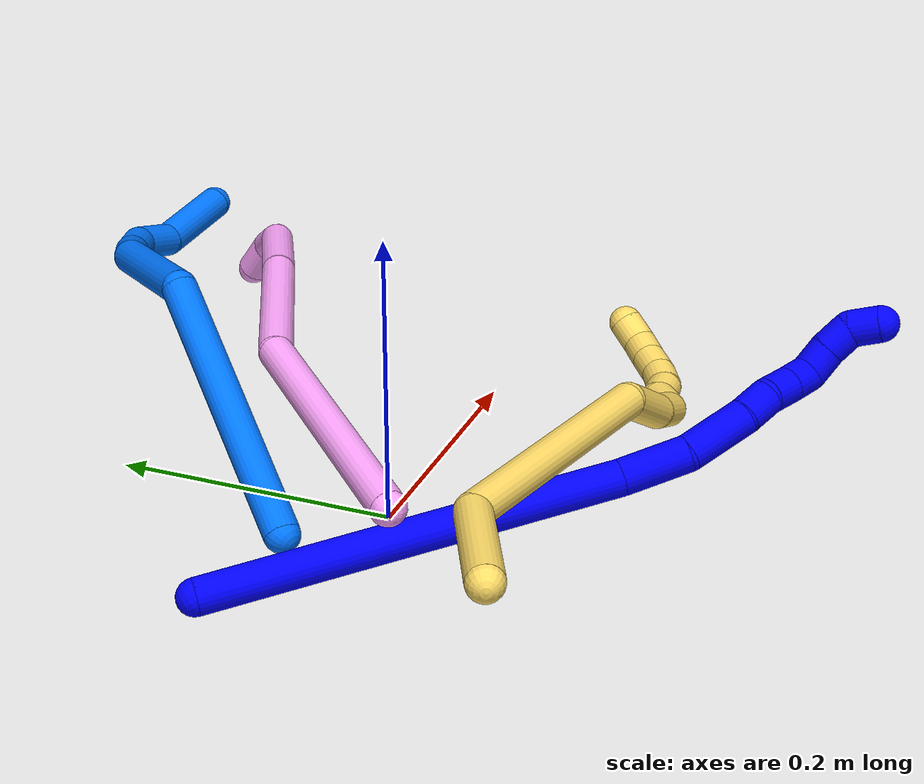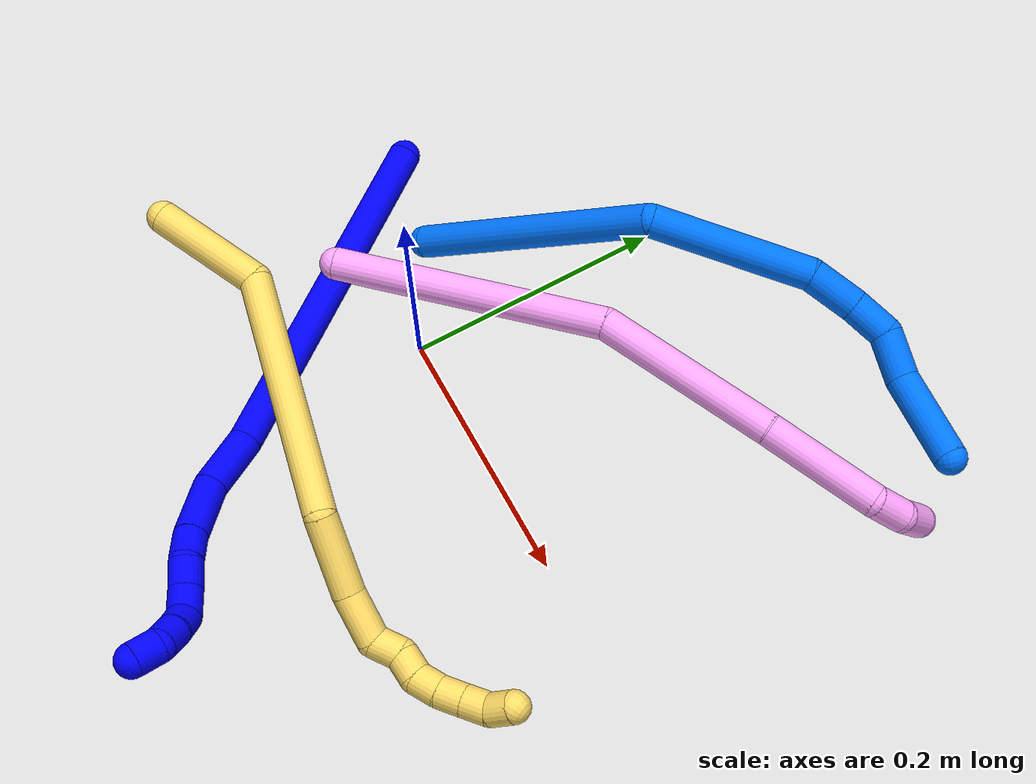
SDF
<sdf version="1.7">
 <world name="default">
  <model name="1">
   <static>0</static>
   <link name="1">
    <collision name="collision-cylinder-e_1_1_4">
     <pose>0.023128 -0.03682 0.134424 0.267354 0.164438 0.022163</pose>
     <geometry><cylinder><radius>0.0125</radius><length>0.282564</length></cylinder></geometry>
     <surface>
      <friction><ode><mu>1.16</mu><mu2>1.16</mu2><slip1>0</slip1><slip2>0</slip2></ode></friction>
      <contact><ode><kp>1e+06</kp><kd>1</kd><max_vel>0</max_vel><min_depth>0.001</min_depth></ode></contact>
     </surface>
    </collision>
    <visual name="visual-cylinder-e_1_1_4">
     <pose>0.023128 -0.03682 0.134424 0.267354 0.164438 0.022163</pose>
     <geometry><cylinder><radius>0.0125</radius><length>0.282564</length></cylinder></geometry>
     <material><ambient>0 0 1 1</ambient></material>
    </visual>
    <collision name="collision-cylinder-e_2_4_5">
     <pose>0.046409 -0.078474 0.291579 0.209531 0.00662 0.000696</pose>
     <geometry><cylinder><radius>0.0125</radius><length>0.046478</length></cylinder></geometry>
     <surface>
      <friction><ode><mu>1.16</mu><mu2>1.16</mu2><slip1>0</slip1><slip2>0</slip2></ode></friction>
      <contact><ode><kp>1e+06</kp><kd>1</kd><max_vel>0</max_vel><min_depth>0.001</min_depth></ode></contact>
     </surface>
    </collision>
    <visual name="visual-cylinder-e_2_4_5">
     <pose>0.046409 -0.078474 0.291579 0.209531 0.00662 0.000696</pose>
     <geometry><cylinder><radius>0.0125</radius><length>0.046478</length></cylinder></geometry>
     <material><ambient>0 0 1 1</ambient></material>
    </visual>
    <collision name="collision-cylinder-e_3_5_6">
     <pose>0.050072 -0.082521 0.337061 -0.034567 0.152958 -0.002649</pose>
     <geometry><cylinder><radius>0.0125</radius><length>0.046069</length></cylinder></geometry>
     <surface>
      <friction><ode><mu>1.16</mu><mu2>1.16</mu2><slip1>0</slip1><slip2>0</slip2></ode></friction>
      <contact><ode><kp>1e+06</kp><kd>1</kd><max_vel>0</max_vel><min_depth>0.001</min_depth></ode></contact>
     </surface>
    </collision>
    <visual name="visual-cylinder-e_3_5_6">
     <pose>0.050072 -0.082521 0.337061 -0.034567 0.152958 -0.002649</pose>
     <geometry><cylinder><radius>0.0125</radius><length>0.046069</length></cylinder></geometry>
     <material><ambient>0 0 1 1</ambient></material>
    </visual>
    <collision name="collision-cylinder-e_4_6_7">
     <pose>0.056644 -0.080062 0.370458 -0.155805 0.276864 -0.02175</pose>
     <geometry><cylinder><radius>0.0125</radius><length>0.022404</length></cylinder></geometry>
     <surface>
      <friction><ode><mu>1.16</mu><mu2>1.16</mu2><slip1>0</slip1><slip2>0</slip2></ode></friction>
      <contact><ode><kp>1e+06</kp><kd>1</kd><max_vel>0</max_vel><min_depth>0.001</min_depth></ode></contact>
     </surface>
    </collision>
    <visual name="visual-cylinder-e_4_6_7">
     <pose>0.056644 -0.080062 0.370458 -0.155805 0.276864 -0.02175</pose>
     <geometry><cylinder><radius>0.0125</radius><length>0.022404</length></cylinder></geometry>
     <material><ambient>0 0 1 1</ambient></material>
    </visual>
    <collision name="collision-cylinder-e_5_7_8">
     <pose>0.065253 -0.078531 0.389952 0.015848 0.55985 0.004556</pose>
     <geometry><cylinder><radius>0.0125</radius><length>0.02089</length></cylinder></geometry>
     <surface>
      <friction><ode><mu>1.16</mu><mu2>1.16</mu2><slip1>0</slip1><slip2>0</slip2></ode></friction>
      <contact><ode><kp>1e+06</kp><kd>1</kd><max_vel>0</max_vel><min_depth>0.001</min_depth></ode></contact>
     </surface>
    </collision>
    <visual name="visual-cylinder-e_5_7_8">
     <pose>0.065253 -0.078531 0.389952 0.015848 0.55985 0.004556</pose>
     <geometry><cylinder><radius>0.0125</radius><length>0.02089</length></cylinder></geometry>
     <material><ambient>0 0 1 1</ambient></material>
    </visual>
    <collision name="collision-cylinder-e_6_8_9">
     <pose>0.075595 -0.078548 0.407876 -0.013503 0.486107 -0.003348</pose>
     <geometry><cylinder><radius>0.0125</radius><length>0.02053</length></cylinder></geometry>
     <surface>
      <friction><ode><mu>1.16</mu><mu2>1.16</mu2><slip1>0</slip1><slip2>0</slip2></ode></friction>
      <contact><ode><kp>1e+06</kp><kd>1</kd><max_vel>0</max_vel><min_depth>0.001</min_depth></ode></contact>
     </surface>
    </collision>
    <visual name="visual-cylinder-e_6_8_9">
     <pose>0.075595 -0.078548 0.407876 -0.013503 0.486107 -0.003348</pose>
     <geometry><cylinder><radius>0.0125</radius><length>0.02053</length></cylinder></geometry>
     <material><ambient>0 0 1 1</ambient></material>
    </visual>
    <collision name="collision-cylinder-e_7_9_10">
     <pose>0.078544 -0.07525 0.426461 -0.322306 -0.182188 0.029697</pose>
     <geometry><cylinder><radius>0.0125</radius><length>0.02039</length></cylinder></geometry>
     <surface>
      <friction><ode><mu>1.16</mu><mu2>1.16</mu2><slip1>0</slip1><slip2>0</slip2></ode></friction>
      <contact><ode><kp>1e+06</kp><kd>1</kd><max_vel>0</max_vel><min_depth>0.001</min_depth></ode></contact>
     </surface>
    </collision>
    <visual name="visual-cylinder-e_7_9_10">
     <pose>0.078544 -0.07525 0.426461 -0.322306 -0.182188 0.029697</pose>
     <geometry><cylinder><radius>0.0125</radius><length>0.02039</length></cylinder></geometry>
     <material><ambient>0 0 1 1</ambient></material>
    </visual>
    <collision name="collision-cylinder-e_8_10_11">
     <pose>0.074348 -0.070443 0.4456 -0.167782 -0.235982 0.019935</pose>
     <geometry><cylinder><radius>0.0125</radius><length>0.02009</length></cylinder></geometry>
     <surface>
      <friction><ode><mu>1.16</mu><mu2>1.16</mu2><slip1>0</slip1><slip2>0</slip2></ode></friction>
      <contact><ode><kp>1e+06</kp><kd>1</kd><max_vel>0</max_vel><min_depth>0.001</min_depth></ode></contact>
     </surface>
    </collision>
    <visual name="visual-cylinder-e_8_10_11">
     <pose>0.074348 -0.070443 0.4456 -0.167782 -0.235982 0.019935</pose>
     <geometry><cylinder><radius>0.0125</radius><length>0.02009</length></cylinder></geometry>
     <material><ambient>0 0 1 1</ambient></material>
    </visual>
    <collision name="collision-cylinder-e_9_11_2">
     <pose>0.068472 -0.073118 0.463888 0.461504 -0.349812 -0.082984</pose>
     <geometry><cylinder><radius>0.0125</radius><length>0.020586</length></cylinder></geometry>
     <surface>
      <friction><ode><mu>1.16</mu><mu2>1.16</mu2><slip1>0</slip1><slip2>0</slip2></ode></friction>
      <contact><ode><kp>1e+06</kp><kd>1</kd><max_vel>0</max_vel><min_depth>0.001</min_depth></ode></contact>
     </surface>
    </collision>
    <visual name="visual-cylinder-e_9_11_2">
     <pose>0.068472 -0.073118 0.463888 0.461504 -0.349812 -0.082984</pose>
     <geometry><cylinder><radius>0.0125</radius><length>0.020586</length></cylinder></geometry>
     <material><ambient>0 0 1 1</ambient></material>
    </visual>
    <collision name="collision-sphere-2">
     <pose>0.064944 -0.077424 0.472546 0 -0 0</pose>
     <geometry><sphere><radius>0.0125</radius></sphere></geometry>
     <surface>
      <friction><ode><mu>1.16</mu><mu2>1.16</mu2><slip1>0</slip1><slip2>0</slip2></ode></friction>
      <contact><ode><kp>1e+06</kp><kd>1</kd><max_vel>0</max_vel><min_depth>0.001</min_depth></ode></contact>
     </surface>
    </collision>
    <visual name="visual-sphere-2">
     <pose>0.064944 -0.077424 0.472546 0 -0 0</pose>
     <geometry><sphere><radius>0.0125</radius></sphere></geometry>
     <material><ambient>0 0 1 1</ambient></material>
    </visual>
    <collision name="collision-sphere-11">
     <pose>0.072 -0.068812 0.45523 0 -0 0</pose>
     <geometry><sphere><radius>0.0125</radius></sphere></geometry>
     <surface>
      <friction><ode><mu>1.16</mu><mu2>1.16</mu2><slip1>0</slip1><slip2>0</slip2></ode></friction>
      <contact><ode><kp>1e+06</kp><kd>1</kd><max_vel>0</max_vel><min_depth>0.001</min_depth></ode></contact>
     </surface>
    </collision>
    <visual name="visual-sphere-11">
     <pose>0.072 -0.068812 0.45523 0 -0 0</pose>
     <geometry><sphere><radius>0.0125</radius></sphere></geometry>
     <material><ambient>0 0 1 1</ambient></material>
    </visual>
    <collision name="collision-sphere-10">
     <pose>0.076697 -0.072074 0.435971 0 -0 0</pose>
     <geometry><sphere><radius>0.0125</radius></sphere></geometry>
     <surface>
      <friction><ode><mu>1.16</mu><mu2>1.16</mu2><slip1>0</slip1><slip2>0</slip2></ode></friction>
      <contact><ode><kp>1e+06</kp><kd>1</kd><max_vel>0</max_vel><min_depth>0.001</min_depth></ode></contact>
     </surface>
    </collision>
    <visual name="visual-sphere-10">
     <pose>0.076697 -0.072074 0.435971 0 -0 0</pose>
     <geometry><sphere><radius>0.0125</radius></sphere></geometry>
     <material><ambient>0 0 1 1</ambient></material>
    </visual>
    <collision name="collision-sphere-9">
     <pose>0.080391 -0.078426 0.416951 0 -0 0</pose>
     <geometry><sphere><radius>0.0125</radius></sphere></geometry>
     <surface>
      <friction><ode><mu>1.16</mu><mu2>1.16</mu2><slip1>0</slip1><slip2>0</slip2></ode></friction>
      <contact><ode><kp>1e+06</kp><kd>1</kd><max_vel>0</max_vel><min_depth>0.001</min_depth></ode></contact>
     </surface>
    </collision>
    <visual name="visual-sphere-9">
     <pose>0.080391 -0.078426 0.416951 0 -0 0</pose>
     <geometry><sphere><radius>0.0125</radius></sphere></geometry>
     <material><ambient>0 0 1 1</ambient></material>
    </visual>
    <collision name="collision-sphere-4">
     <pose>0.046255 -0.073641 0.268849 0 -0 0</pose>
     <geometry><sphere><radius>0.0125</radius></sphere></geometry>
     <surface>
      <friction><ode><mu>1.16</mu><mu2>1.16</mu2><slip1>0</slip1><slip2>0</slip2></ode></friction>
      <contact><ode><kp>1e+06</kp><kd>1</kd><max_vel>0</max_vel><min_depth>0.001</min_depth></ode></contact>
     </surface>
    </collision>
    <visual name="visual-sphere-4">
     <pose>0.046255 -0.073641 0.268849 0 -0 0</pose>
     <geometry><sphere><radius>0.0125</radius></sphere></geometry>
     <material><ambient>0 0 1 1</ambient></material>
    </visual>
    <collision name="collision-sphere-1">
     <geometry><sphere><radius>0.0125</radius></sphere></geometry>
     <surface>
      <friction><ode><mu>1.16</mu><mu2>1.16</mu2><slip1>0</slip1><slip2>0</slip2></ode></friction>
      <contact><ode><kp>1e+06</kp><kd>1</kd><max_vel>0</max_vel><min_depth>0.001</min_depth></ode></contact>
     </surface>
    </collision>
    <visual name="visual-sphere-1">
     <geometry><sphere><radius>0.0125</radius></sphere></geometry>
     <material><ambient>0 0 1 1</ambient></material>
    </visual>
    <collision name="collision-sphere-8">
     <pose>0.0708 -0.078671 0.398801 0 -0 0</pose>
     <geometry><sphere><radius>0.0125</radius></sphere></geometry>
     <surface>
      <friction><ode><mu>1.16</mu><mu2>1.16</mu2><slip1>0</slip1><slip2>0</slip2></ode></friction>
      <contact><ode><kp>1e+06</kp><kd>1</kd><max_vel>0</max_vel><min_depth>0.001</min_depth></ode></contact>
     </surface>
    </collision>
    <visual name="visual-sphere-8">
     <pose>0.0708 -0.078671 0.398801 0 -0 0</pose>
     <geometry><sphere><radius>0.0125</radius></sphere></geometry>
     <material><ambient>0 0 1 1</ambient></material>
    </visual>
    <collision name="collision-sphere-5">
     <pose>0.046563 -0.083308 0.314309 0 -0 0</pose>
     <geometry><sphere><radius>0.0125</radius></sphere></geometry>
     <surface>
      <friction><ode><mu>1.16</mu><mu2>1.16</mu2><slip1>0</slip1><slip2>0</slip2></ode></friction>
      <contact><ode><kp>1e+06</kp><kd>1</kd><max_vel>0</max_vel><min_depth>0.001</min_depth></ode></contact>
     </surface>
    </collision>
    <visual name="visual-sphere-5">
     <pose>0.046563 -0.083308 0.314309 0 -0 0</pose>
     <geometry><sphere><radius>0.0125</radius></sphere></geometry>
     <material><ambient>0 0 1 1</ambient></material>
    </visual>
    <collision name="collision-sphere-6">
     <pose>0.053582 -0.081735 0.359813 0 -0 0</pose>
     <geometry><sphere><radius>0.0125</radius></sphere></geometry>
     <surface>
      <friction><ode><mu>1.16</mu><mu2>1.16</mu2><slip1>0</slip1><slip2>0</slip2></ode></friction>
      <contact><ode><kp>1e+06</kp><kd>1</kd><max_vel>0</max_vel><min_depth>0.001</min_depth></ode></contact>
     </surface>
    </collision>
    <visual name="visual-sphere-6">
     <pose>0.053582 -0.081735 0.359813 0 -0 0</pose>
     <geometry><sphere><radius>0.0125</radius></sphere></geometry>
     <material><ambient>0 0 1 1</ambient></material>
    </visual>
    <collision name="collision-sphere-7">
     <pose>0.059706 -0.07839 0.381103 0 -0 0</pose>
     <geometry><sphere><radius>0.0125</radius></sphere></geometry>
     <surface>
      <friction><ode><mu>1.16</mu><mu2>1.16</mu2><slip1>0</slip1><slip2>0</slip2></ode></friction>
      <contact><ode><kp>1e+06</kp><kd>1</kd><max_vel>0</max_vel><min_depth>0.001</min_depth></ode></contact>
     </surface>
    </collision>
    <visual name="visual-sphere-7">
     <pose>0.059706 -0.07839 0.381103 0 -0 0</pose>
     <geometry><sphere><radius>0.0125</radius></sphere></geometry>
     <material><ambient>0 0 1 1</ambient></material>
    </visual>
    <inertial>
     <pose>0.039375 -0.054709 0.23816 0 -0 0</pose>
     <mass>0.5</mass>
     <inertia>
      <ixx>0.00194</ixx>
      <ixy>0</ixy>
      <ixz>0</ixz>
      <iyy>0.001889</iyy>
      <iyz>0</iyz>
      <izz>0.000219</izz>
     </inertia>
    </inertial>
   </link>
   <pose>-0.150514 0.065092 0.011465 1.01077 0.630585 0.368362</pose>
  </model>
  <model name="4">
   <static>0</static>
   <link name="4">
    <collision name="collision-cylinder-e_1_1_4">
     <pose>0.056621 -0.004102 -0.088759 3.09542 0.567351 2.98351</pose>
     <geometry><cylinder><radius>0.0125</radius><length>0.210721</length></cylinder></geometry>
     <surface>
      <friction><ode><mu>1.16</mu><mu2>1.16</mu2><slip1>0</slip1><slip2>0</slip2></ode></friction>
      <contact><ode><kp>1e+06</kp><kd>1</kd><max_vel>0</max_vel><min_depth>0.001</min_depth></ode></contact>
     </surface>
    </collision>
    <visual name="visual-cylinder-e_1_1_4">
     <pose>0.056621 -0.004102 -0.088759 3.09542 0.567351 2.98351</pose>
     <geometry><cylinder><radius>0.0125</radius><length>0.210721</length></cylinder></geometry>
     <material><ambient>1 0.65098 0.996078 1</ambient></material>
    </visual>
    <collision name="collision-cylinder-e_2_4_5">
     <pose>0.128639 -0.017286 -0.246747 3.01114 0.217045 2.06143</pose>
     <geometry><cylinder><radius>0.0125</radius><length>0.142999</length></cylinder></geometry>
     <surface>
      <friction><ode><mu>1.16</mu><mu2>1.16</mu2><slip1>0</slip1><slip2>0</slip2></ode></friction>
      <contact><ode><kp>1e+06</kp><kd>1</kd><max_vel>0</max_vel><min_depth>0.001</min_depth></ode></contact>
     </surface>
    </collision>
    <visual name="visual-cylinder-e_2_4_5">
     <pose>0.128639 -0.017286 -0.246747 3.01114 0.217045 2.06143</pose>
     <geometry><cylinder><radius>0.0125</radius><length>0.142999</length></cylinder></geometry>
     <material><ambient>1 0.65098 0.996078 1</ambient></material>
    </visual>
    <collision name="collision-cylinder-e_3_5_6">
     <pose>0.15267 -0.026279 -0.360107 -3.13957 0.1932 -3.1207</pose>
     <geometry><cylinder><radius>0.0125</radius><length>0.089937</length></cylinder></geometry>
     <surface>
      <friction><ode><mu>1.16</mu><mu2>1.16</mu2><slip1>0</slip1><slip2>0</slip2></ode></friction>
      <contact><ode><kp>1e+06</kp><kd>1</kd><max_vel>0</max_vel><min_depth>0.001</min_depth></ode></contact>
     </surface>
    </collision>
    <visual name="visual-cylinder-e_3_5_6">
     <pose>0.15267 -0.026279 -0.360107 -3.13957 0.1932 -3.1207</pose>
     <geometry><cylinder><radius>0.0125</radius><length>0.089937</length></cylinder></geometry>
     <material><ambient>1 0.65098 0.996078 1</ambient></material>
    </visual>
    <collision name="collision-cylinder-e_4_6_7">
     <pose>0.164095 -0.019412 -0.415431 -2.59707 0.210193 -0.722478</pose>
     <geometry><cylinder><radius>0.0125</radius><length>0.026759</length></cylinder></geometry>
     <surface>
      <friction><ode><mu>1.16</mu><mu2>1.16</mu2><slip1>0</slip1><slip2>0</slip2></ode></friction>
      <contact><ode><kp>1e+06</kp><kd>1</kd><max_vel>0</max_vel><min_depth>0.001</min_depth></ode></contact>
     </surface>
    </collision>
    <visual name="visual-cylinder-e_4_6_7">
     <pose>0.164095 -0.019412 -0.415431 -2.59707 0.210193 -0.722478</pose>
     <geometry><cylinder><radius>0.0125</radius><length>0.026759</length></cylinder></geometry>
     <material><ambient>1 0.65098 0.996078 1</ambient></material>
    </visual>
    <collision name="collision-cylinder-e_5_7_2">
     <pose>0.169425 0.00025 -0.433434 -2.05706 0.172425 -0.284942</pose>
     <geometry><cylinder><radius>0.0125</radius><length>0.029584</length></cylinder></geometry>
     <surface>
      <friction><ode><mu>1.16</mu><mu2>1.16</mu2><slip1>0</slip1><slip2>0</slip2></ode></friction>
      <contact><ode><kp>1e+06</kp><kd>1</kd><max_vel>0</max_vel><min_depth>0.001</min_depth></ode></contact>
     </surface>
    </collision>
    <visual name="visual-cylinder-e_5_7_2">
     <pose>0.169425 0.00025 -0.433434 -2.05706 0.172425 -0.284942</pose>
     <geometry><cylinder><radius>0.0125</radius><length>0.029584</length></cylinder></geometry>
     <material><ambient>1 0.65098 0.996078 1</ambient></material>
    </visual>
    <collision name="collision-sphere-2">
     <pose>0.171963 0.013133 -0.440244 0 -0 0</pose>
     <geometry><sphere><radius>0.0125</radius></sphere></geometry>
     <surface>
      <friction><ode><mu>1.16</mu><mu2>1.16</mu2><slip1>0</slip1><slip2>0</slip2></ode></friction>
      <contact><ode><kp>1e+06</kp><kd>1</kd><max_vel>0</max_vel><min_depth>0.001</min_depth></ode></contact>
     </surface>
    </collision>
    <visual name="visual-sphere-2">
     <pose>0.171963 0.013133 -0.440244 0 -0 0</pose>
     <geometry><sphere><radius>0.0125</radius></sphere></geometry>
     <material><ambient>1 0.65098 0.996078 1</ambient></material>
    </visual>
    <collision name="collision-sphere-7">
     <pose>0.166887 -0.012634 -0.426624 0 -0 0</pose>
     <geometry><sphere><radius>0.0125</radius></sphere></geometry>
     <surface>
      <friction><ode><mu>1.16</mu><mu2>1.16</mu2><slip1>0</slip1><slip2>0</slip2></ode></friction>
      <contact><ode><kp>1e+06</kp><kd>1</kd><max_vel>0</max_vel><min_depth>0.001</min_depth></ode></contact>
     </surface>
    </collision>
    <visual name="visual-sphere-7">
     <pose>0.166887 -0.012634 -0.426624 0 -0 0</pose>
     <geometry><sphere><radius>0.0125</radius></sphere></geometry>
     <material><ambient>1 0.65098 0.996078 1</ambient></material>
    </visual>
    <collision name="collision-sphere-6">
     <pose>0.161304 -0.02619 -0.404239 0 -0 0</pose>
     <geometry><sphere><radius>0.0125</radius></sphere></geometry>
     <surface>
      <friction><ode><mu>1.16</mu><mu2>1.16</mu2><slip1>0</slip1><slip2>0</slip2></ode></friction>
      <contact><ode><kp>1e+06</kp><kd>1</kd><max_vel>0</max_vel><min_depth>0.001</min_depth></ode></contact>
     </surface>
    </collision>
    <visual name="visual-sphere-6">
     <pose>0.161304 -0.02619 -0.404239 0 -0 0</pose>
     <geometry><sphere><radius>0.0125</radius></sphere></geometry>
     <material><ambient>1 0.65098 0.996078 1</ambient></material>
    </visual>
    <collision name="collision-sphere-5">
     <pose>0.144036 -0.026369 -0.315975 0 -0 0</pose>
     <geometry><sphere><radius>0.0125</radius></sphere></geometry>
     <surface>
      <friction><ode><mu>1.16</mu><mu2>1.16</mu2><slip1>0</slip1><slip2>0</slip2></ode></friction>
      <contact><ode><kp>1e+06</kp><kd>1</kd><max_vel>0</max_vel><min_depth>0.001</min_depth></ode></contact>
     </surface>
    </collision>
    <visual name="visual-sphere-5">
     <pose>0.144036 -0.026369 -0.315975 0 -0 0</pose>
     <geometry><sphere><radius>0.0125</radius></sphere></geometry>
     <material><ambient>1 0.65098 0.996078 1</ambient></material>
    </visual>
    <collision name="collision-sphere-1">
     <geometry><sphere><radius>0.0125</radius></sphere></geometry>
     <surface>
      <friction><ode><mu>1.16</mu><mu2>1.16</mu2><slip1>0</slip1><slip2>0</slip2></ode></friction>
      <contact><ode><kp>1e+06</kp><kd>1</kd><max_vel>0</max_vel><min_depth>0.001</min_depth></ode></contact>
     </surface>
    </collision>
    <visual name="visual-sphere-1">
     <geometry><sphere><radius>0.0125</radius></sphere></geometry>
     <material><ambient>1 0.65098 0.996078 1</ambient></material>
    </visual>
    <collision name="collision-sphere-4">
     <pose>0.113242 -0.008203 -0.177518 0 -0 0</pose>
     <geometry><sphere><radius>0.0125</radius></sphere></geometry>
     <surface>
      <friction><ode><mu>1.16</mu><mu2>1.16</mu2><slip1>0</slip1><slip2>0</slip2></ode></friction>
      <contact><ode><kp>1e+06</kp><kd>1</kd><max_vel>0</max_vel><min_depth>0.001</min_depth></ode></contact>
     </surface>
    </collision>
    <visual name="visual-sphere-4">
     <pose>0.113242 -0.008203 -0.177518 0 -0 0</pose>
     <geometry><sphere><radius>0.0125</radius></sphere></geometry>
     <material><ambient>1 0.65098 0.996078 1</ambient></material>
    </visual>
    <inertial>
     <pose>0.106921 -0.012423 -0.220628 0 -0 0</pose>
     <mass>0.5</mass>
     <inertia>
      <ixx>-0.0005</ixx>
      <ixy>0</ixy>
      <ixz>0</ixz>
      <iyy>0.001281</iyy>
      <iyz>0</iyz>
      <izz>-0.000467</izz>
     </inertia>
    </inertial>
   </link>
   <pose>-0.070763 -0.031146 0.052415 -1.34713 -0.404212 1.77353</pose>
  </model>
  <model name="5">
   <static>0</static>
   <link name="5">
    <collision name="collision-cylinder-e_1_1_4">
     <pose>-0.000319 0.002116 0.043763 -0.048311 -0.007272 0.000176</pose>
     <geometry><cylinder><radius>0.0125</radius><length>0.087631</length></cylinder></geometry>
     <surface>
      <friction><ode><mu>1.16</mu><mu2>1.16</mu2><slip1>0</slip1><slip2>0</slip2></ode></friction>
      <contact><ode><kp>1e+06</kp><kd>1</kd><max_vel>0</max_vel><min_depth>0.001</min_depth></ode></contact>
     </surface>
    </collision>
    <visual name="visual-cylinder-e_1_1_4">
     <pose>-0.000319 0.002116 0.043763 -0.048311 -0.007272 0.000176</pose>
     <geometry><cylinder><radius>0.0125</radius><length>0.087631</length></cylinder></geometry>
     <material><ambient>1 0.858824 0.4 1</ambient></material>
    </visual>
    <collision name="collision-cylinder-e_2_4_5">
     <pose>0.045704 -0.027515 0.164987 0.388967 0.505575 0.101674</pose>
     <geometry><cylinder><radius>0.0125</radius><length>0.191369</length></cylinder></geometry>
     <surface>
      <friction><ode><mu>1.16</mu><mu2>1.16</mu2><slip1>0</slip1><slip2>0</slip2></ode></friction>
      <contact><ode><kp>1e+06</kp><kd>1</kd><max_vel>0</max_vel><min_depth>0.001</min_depth></ode></contact>
     </surface>
    </collision>
    <visual name="visual-cylinder-e_2_4_5">
     <pose>0.045704 -0.027515 0.164987 0.388967 0.505575 0.101674</pose>
     <geometry><cylinder><radius>0.0125</radius><length>0.191369</length></cylinder></geometry>
     <material><ambient>1 0.858824 0.4 1</ambient></material>
    </visual>
    <collision name="collision-cylinder-e_3_5_6">
     <pose>0.112056 -0.05442 0.264586 -0.215339 0.723377 -0.08174</pose>
     <geometry><cylinder><radius>0.0125</radius><length>0.060465</length></cylinder></geometry>
     <surface>
      <friction><ode><mu>1.16</mu><mu2>1.16</mu2><slip1>0</slip1><slip2>0</slip2></ode></friction>
      <contact><ode><kp>1e+06</kp><kd>1</kd><max_vel>0</max_vel><min_depth>0.001</min_depth></ode></contact>
     </surface>
    </collision>
    <visual name="visual-cylinder-e_3_5_6">
     <pose>0.112056 -0.05442 0.264586 -0.215339 0.723377 -0.08174</pose>
     <geometry><cylinder><radius>0.0125</radius><length>0.060465</length></cylinder></geometry>
     <material><ambient>1 0.858824 0.4 1</ambient></material>
    </visual>
    <collision name="collision-cylinder-e_4_6_7">
     <pose>0.142009 -0.047637 0.302912 -0.119332 0.547532 -0.033547</pose>
     <geometry><cylinder><radius>0.0125</radius><length>0.038192</length></cylinder></geometry>
     <surface>
      <friction><ode><mu>1.16</mu><mu2>1.16</mu2><slip1>0</slip1><slip2>0</slip2></ode></friction>
      <contact><ode><kp>1e+06</kp><kd>1</kd><max_vel>0</max_vel><min_depth>0.001</min_depth></ode></contact>
     </surface>
    </collision>
    <visual name="visual-cylinder-e_4_6_7">
     <pose>0.142009 -0.047637 0.302912 -0.119332 0.547532 -0.033547</pose>
     <geometry><cylinder><radius>0.0125</radius><length>0.038192</length></cylinder></geometry>
     <material><ambient>1 0.858824 0.4 1</ambient></material>
    </visual>
    <collision name="collision-cylinder-e_5_7_8">
     <pose>0.150468 -0.043692 0.329969 -0.182315 -0.133313 0.012204</pose>
     <geometry><cylinder><radius>0.0125</radius><length>0.022301</length></cylinder></geometry>
     <surface>
      <friction><ode><mu>1.16</mu><mu2>1.16</mu2><slip1>0</slip1><slip2>0</slip2></ode></friction>
      <contact><ode><kp>1e+06</kp><kd>1</kd><max_vel>0</max_vel><min_depth>0.001</min_depth></ode></contact>
     </surface>
    </collision>
    <visual name="visual-cylinder-e_5_7_8">
     <pose>0.150468 -0.043692 0.329969 -0.182315 -0.133313 0.012204</pose>
     <geometry><cylinder><radius>0.0125</radius><length>0.022301</length></cylinder></geometry>
     <material><ambient>1 0.858824 0.4 1</ambient></material>
    </visual>
    <collision name="collision-cylinder-e_6_8_9">
     <pose>0.15194 -0.043397 0.350245 0.17964 0.299704 0.027194</pose>
     <geometry><cylinder><radius>0.0125</radius><length>0.020015</length></cylinder></geometry>
     <surface>
      <friction><ode><mu>1.16</mu><mu2>1.16</mu2><slip1>0</slip1><slip2>0</slip2></ode></friction>
      <contact><ode><kp>1e+06</kp><kd>1</kd><max_vel>0</max_vel><min_depth>0.001</min_depth></ode></contact>
     </surface>
    </collision>
    <visual name="visual-cylinder-e_6_8_9">
     <pose>0.15194 -0.043397 0.350245 0.17964 0.299704 0.027194</pose>
     <geometry><cylinder><radius>0.0125</radius><length>0.020015</length></cylinder></geometry>
     <material><ambient>1 0.858824 0.4 1</ambient></material>
    </visual>
    <collision name="collision-cylinder-e_7_9_10">
     <pose>0.153604 -0.045212 0.369579 0.010807 -0.12934 -0.0007</pose>
     <geometry><cylinder><radius>0.0125</radius><length>0.020021</length></cylinder></geometry>
     <surface>
      <friction><ode><mu>1.16</mu><mu2>1.16</mu2><slip1>0</slip1><slip2>0</slip2></ode></friction>
      <contact><ode><kp>1e+06</kp><kd>1</kd><max_vel>0</max_vel><min_depth>0.001</min_depth></ode></contact>
     </surface>
    </collision>
    <visual name="visual-cylinder-e_7_9_10">
     <pose>0.153604 -0.045212 0.369579 0.010807 -0.12934 -0.0007</pose>
     <geometry><cylinder><radius>0.0125</radius><length>0.020021</length></cylinder></geometry>
     <material><ambient>1 0.858824 0.4 1</ambient></material>
    </visual>
    <collision name="collision-cylinder-e_8_10_11">
     <pose>0.149379 -0.044992 0.389061 -0.034235 -0.297694 0.005134</pose>
     <geometry><cylinder><radius>0.0125</radius><length>0.020001</length></cylinder></geometry>
     <surface>
      <friction><ode><mu>1.16</mu><mu2>1.16</mu2><slip1>0</slip1><slip2>0</slip2></ode></friction>
      <contact><ode><kp>1e+06</kp><kd>1</kd><max_vel>0</max_vel><min_depth>0.001</min_depth></ode></contact>
     </surface>
    </collision>
    <visual name="visual-cylinder-e_8_10_11">
     <pose>0.149379 -0.044992 0.389061 -0.034235 -0.297694 0.005134</pose>
     <geometry><cylinder><radius>0.0125</radius><length>0.020001</length></cylinder></geometry>
     <material><ambient>1 0.858824 0.4 1</ambient></material>
    </visual>
    <collision name="collision-cylinder-e_9_11_12">
     <pose>0.143185 -0.044865 0.408067 0.021104 -0.33216 -0.003538</pose>
     <geometry><cylinder><radius>0.0125</radius><length>0.020001</length></cylinder></geometry>
     <surface>
      <friction><ode><mu>1.16</mu><mu2>1.16</mu2><slip1>0</slip1><slip2>0</slip2></ode></friction>
      <contact><ode><kp>1e+06</kp><kd>1</kd><max_vel>0</max_vel><min_depth>0.001</min_depth></ode></contact>
     </surface>
    </collision>
    <visual name="visual-cylinder-e_9_11_12">
     <pose>0.143185 -0.044865 0.408067 0.021104 -0.33216 -0.003538</pose>
     <geometry><cylinder><radius>0.0125</radius><length>0.020001</length></cylinder></geometry>
     <material><ambient>1 0.858824 0.4 1</ambient></material>
    </visual>
    <collision name="collision-cylinder-e_10_12_2">
     <pose>0.132749 -0.046718 0.424288 0.239645 -0.800003 -0.101721</pose>
     <geometry><cylinder><radius>0.0125</radius><length>0.020004</length></cylinder></geometry>
     <surface>
      <friction><ode><mu>1.16</mu><mu2>1.16</mu2><slip1>0</slip1><slip2>0</slip2></ode></friction>
      <contact><ode><kp>1e+06</kp><kd>1</kd><max_vel>0</max_vel><min_depth>0.001</min_depth></ode></contact>
     </surface>
    </collision>
    <visual name="visual-cylinder-e_10_12_2">
     <pose>0.132749 -0.046718 0.424288 0.239645 -0.800003 -0.101721</pose>
     <geometry><cylinder><radius>0.0125</radius><length>0.020004</length></cylinder></geometry>
     <material><ambient>1 0.858824 0.4 1</ambient></material>
    </visual>
    <collision name="collision-sphere-2">
     <pose>0.125574 -0.048372 0.431058 0 -0 0</pose>
     <geometry><sphere><radius>0.0125</radius></sphere></geometry>
     <surface>
      <friction><ode><mu>1.16</mu><mu2>1.16</mu2><slip1>0</slip1><slip2>0</slip2></ode></friction>
      <contact><ode><kp>1e+06</kp><kd>1</kd><max_vel>0</max_vel><min_depth>0.001</min_depth></ode></contact>
     </surface>
    </collision>
    <visual name="visual-sphere-2">
     <pose>0.125574 -0.048372 0.431058 0 -0 0</pose>
     <geometry><sphere><radius>0.0125</radius></sphere></geometry>
     <material><ambient>1 0.858824 0.4 1</ambient></material>
    </visual>
    <collision name="collision-sphere-12">
     <pose>0.139924 -0.045064 0.417519 0 -0 0</pose>
     <geometry><sphere><radius>0.0125</radius></sphere></geometry>
     <surface>
      <friction><ode><mu>1.16</mu><mu2>1.16</mu2><slip1>0</slip1><slip2>0</slip2></ode></friction>
      <contact><ode><kp>1e+06</kp><kd>1</kd><max_vel>0</max_vel><min_depth>0.001</min_depth></ode></contact>
     </surface>
    </collision>
    <visual name="visual-sphere-12">
     <pose>0.139924 -0.045064 0.417519 0 -0 0</pose>
     <geometry><sphere><radius>0.0125</radius></sphere></geometry>
     <material><ambient>1 0.858824 0.4 1</ambient></material>
    </visual>
    <collision name="collision-sphere-11">
     <pose>0.146446 -0.044665 0.398616 0 -0 0</pose>
     <geometry><sphere><radius>0.0125</radius></sphere></geometry>
     <surface>
      <friction><ode><mu>1.16</mu><mu2>1.16</mu2><slip1>0</slip1><slip2>0</slip2></ode></friction>
      <contact><ode><kp>1e+06</kp><kd>1</kd><max_vel>0</max_vel><min_depth>0.001</min_depth></ode></contact>
     </surface>
    </collision>
    <visual name="visual-sphere-11">
     <pose>0.146446 -0.044665 0.398616 0 -0 0</pose>
     <geometry><sphere><radius>0.0125</radius></sphere></geometry>
     <material><ambient>1 0.858824 0.4 1</ambient></material>
    </visual>
    <collision name="collision-sphere-10">
     <pose>0.152312 -0.04532 0.379506 0 -0 0</pose>
     <geometry><sphere><radius>0.0125</radius></sphere></geometry>
     <surface>
      <friction><ode><mu>1.16</mu><mu2>1.16</mu2><slip1>0</slip1><slip2>0</slip2></ode></friction>
      <contact><ode><kp>1e+06</kp><kd>1</kd><max_vel>0</max_vel><min_depth>0.001</min_depth></ode></contact>
     </surface>
    </collision>
    <visual name="visual-sphere-10">
     <pose>0.152312 -0.04532 0.379506 0 -0 0</pose>
     <geometry><sphere><radius>0.0125</radius></sphere></geometry>
     <material><ambient>1 0.858824 0.4 1</ambient></material>
    </visual>
    <collision name="collision-sphere-9">
     <pose>0.154895 -0.045105 0.359653 0 -0 0</pose>
     <geometry><sphere><radius>0.0125</radius></sphere></geometry>
     <surface>
      <friction><ode><mu>1.16</mu><mu2>1.16</mu2><slip1>0</slip1><slip2>0</slip2></ode></friction>
      <contact><ode><kp>1e+06</kp><kd>1</kd><max_vel>0</max_vel><min_depth>0.001</min_depth></ode></contact>
     </surface>
    </collision>
    <visual name="visual-sphere-9">
     <pose>0.154895 -0.045105 0.359653 0 -0 0</pose>
     <geometry><sphere><radius>0.0125</radius></sphere></geometry>
     <material><ambient>1 0.858824 0.4 1</ambient></material>
    </visual>
    <collision name="collision-sphere-4">
     <pose>-0.000637 0.004232 0.087526 0 -0 0</pose>
     <geometry><sphere><radius>0.0125</radius></sphere></geometry>
     <surface>
      <friction><ode><mu>1.16</mu><mu2>1.16</mu2><slip1>0</slip1><slip2>0</slip2></ode></friction>
      <contact><ode><kp>1e+06</kp><kd>1</kd><max_vel>0</max_vel><min_depth>0.001</min_depth></ode></contact>
     </surface>
    </collision>
    <visual name="visual-sphere-4">
     <pose>-0.000637 0.004232 0.087526 0 -0 0</pose>
     <geometry><sphere><radius>0.0125</radius></sphere></geometry>
     <material><ambient>1 0.858824 0.4 1</ambient></material>
    </visual>
    <collision name="collision-sphere-1">
     <geometry><sphere><radius>0.0125</radius></sphere></geometry>
     <surface>
      <friction><ode><mu>1.16</mu><mu2>1.16</mu2><slip1>0</slip1><slip2>0</slip2></ode></friction>
      <contact><ode><kp>1e+06</kp><kd>1</kd><max_vel>0</max_vel><min_depth>0.001</min_depth></ode></contact>
     </surface>
    </collision>
    <visual name="visual-sphere-1">
     <geometry><sphere><radius>0.0125</radius></sphere></geometry>
     <material><ambient>1 0.858824 0.4 1</ambient></material>
    </visual>
    <collision name="collision-sphere-8">
     <pose>0.148986 -0.041688 0.340838 0 -0 0</pose>
     <geometry><sphere><radius>0.0125</radius></sphere></geometry>
     <surface>
      <friction><ode><mu>1.16</mu><mu2>1.16</mu2><slip1>0</slip1><slip2>0</slip2></ode></friction>
      <contact><ode><kp>1e+06</kp><kd>1</kd><max_vel>0</max_vel><min_depth>0.001</min_depth></ode></contact>
     </surface>
    </collision>
    <visual name="visual-sphere-8">
     <pose>0.148986 -0.041688 0.340838 0 -0 0</pose>
     <geometry><sphere><radius>0.0125</radius></sphere></geometry>
     <material><ambient>1 0.858824 0.4 1</ambient></material>
    </visual>
    <collision name="collision-sphere-5">
     <pose>0.092045 -0.059262 0.242448 0 -0 0</pose>
     <geometry><sphere><radius>0.0125</radius></sphere></geometry>
     <surface>
      <friction><ode><mu>1.16</mu><mu2>1.16</mu2><slip1>0</slip1><slip2>0</slip2></ode></friction>
      <contact><ode><kp>1e+06</kp><kd>1</kd><max_vel>0</max_vel><min_depth>0.001</min_depth></ode></contact>
     </surface>
    </collision>
    <visual name="visual-sphere-5">
     <pose>0.092045 -0.059262 0.242448 0 -0 0</pose>
     <geometry><sphere><radius>0.0125</radius></sphere></geometry>
     <material><ambient>1 0.858824 0.4 1</ambient></material>
    </visual>
    <collision name="collision-sphere-6">
     <pose>0.132068 -0.049578 0.286724 0 -0 0</pose>
     <geometry><sphere><radius>0.0125</radius></sphere></geometry>
     <surface>
      <friction><ode><mu>1.16</mu><mu2>1.16</mu2><slip1>0</slip1><slip2>0</slip2></ode></friction>
      <contact><ode><kp>1e+06</kp><kd>1</kd><max_vel>0</max_vel><min_depth>0.001</min_depth></ode></contact>
     </surface>
    </collision>
    <visual name="visual-sphere-6">
     <pose>0.132068 -0.049578 0.286724 0 -0 0</pose>
     <geometry><sphere><radius>0.0125</radius></sphere></geometry>
     <material><ambient>1 0.858824 0.4 1</ambient></material>
    </visual>
    <collision name="collision-sphere-7">
     <pose>0.15195 -0.045696 0.319101 0 -0 0</pose>
     <geometry><sphere><radius>0.0125</radius></sphere></geometry>
     <surface>
      <friction><ode><mu>1.16</mu><mu2>1.16</mu2><slip1>0</slip1><slip2>0</slip2></ode></friction>
      <contact><ode><kp>1e+06</kp><kd>1</kd><max_vel>0</max_vel><min_depth>0.001</min_depth></ode></contact>
     </surface>
    </collision>
    <visual name="visual-sphere-7">
     <pose>0.15195 -0.045696 0.319101 0 -0 0</pose>
     <geometry><sphere><radius>0.0125</radius></sphere></geometry>
     <material><ambient>1 0.858824 0.4 1</ambient></material>
    </visual>
    <inertial>
     <pose>0.077793 -0.03134 0.218349 0 -0 0</pose>
     <mass>0.5</mass>
     <inertia>
      <ixx>0.000664</ixx>
      <ixy>0</ixy>
      <ixz>0</ixz>
      <iyy>0.000698</iyy>
      <iyz>0</iyz>
      <izz>-7.8e-05</izz>
     </inertia>
    </inertial>
   </link>
   <pose>-0.158837 -0.129709 0.071135 -1.57776 0.641603 -1.16</pose>
  </model>
  <model name="14">
   <static>0</static>
   <link name="14">
    <collision name="collision-cylinder-e_1_1_4">
     <pose>0.032614 -0.013331 0.094713 0.139837 0.328622 0.023223</pose>
     <geometry><cylinder><radius>0.0125</radius><length>0.202109</length></cylinder></geometry>
     <surface>
      <friction><ode><mu>1.16</mu><mu2>1.16</mu2><slip1>0</slip1><slip2>0</slip2></ode></friction>
      <contact><ode><kp>1e+06</kp><kd>1</kd><max_vel>0</max_vel><min_depth>0.001</min_depth></ode></contact>
     </surface>
    </collision>
    <visual name="visual-cylinder-e_1_1_4">
     <pose>0.032614 -0.013331 0.094713 0.139837 0.328622 0.023223</pose>
     <geometry><cylinder><radius>0.0125</radius><length>0.202109</length></cylinder></geometry>
     <material><ambient>0 0.462745 1 1</ambient></material>
    </visual>
    <collision name="collision-cylinder-e_2_4_5">
     <pose>0.076797 0.008511 0.238689 -0.620074 0.188842 -0.060661</pose>
     <geometry><cylinder><radius>0.0125</radius><length>0.123253</length></cylinder></geometry>
     <surface>
      <friction><ode><mu>1.16</mu><mu2>1.16</mu2><slip1>0</slip1><slip2>0</slip2></ode></friction>
      <contact><ode><kp>1e+06</kp><kd>1</kd><max_vel>0</max_vel><min_depth>0.001</min_depth></ode></contact>
     </surface>
    </collision>
    <visual name="visual-cylinder-e_2_4_5">
     <pose>0.076797 0.008511 0.238689 -0.620074 0.188842 -0.060661</pose>
     <geometry><cylinder><radius>0.0125</radius><length>0.123253</length></cylinder></geometry>
     <material><ambient>0 0.462745 1 1</ambient></material>
    </visual>
    <collision name="collision-cylinder-e_3_5_6">
     <pose>0.096025 0.056964 0.299856 -0.839878 0.405672 -0.183144</pose>
     <geometry><cylinder><radius>0.0125</radius><length>0.038818</length></cylinder></geometry>
     <surface>
      <friction><ode><mu>1.16</mu><mu2>1.16</mu2><slip1>0</slip1><slip2>0</slip2></ode></friction>
      <contact><ode><kp>1e+06</kp><kd>1</kd><max_vel>0</max_vel><min_depth>0.001</min_depth></ode></contact>
     </surface>
    </collision>
    <visual name="visual-cylinder-e_3_5_6">
     <pose>0.096025 0.056964 0.299856 -0.839878 0.405672 -0.183144</pose>
     <geometry><cylinder><radius>0.0125</radius><length>0.038818</length></cylinder></geometry>
     <material><ambient>0 0.462745 1 1</ambient></material>
    </visual>
    <collision name="collision-cylinder-e_4_6_7">
     <pose>0.112272 0.07927 0.320519 -0.800573 0.599017 -0.259852</pose>
     <geometry><cylinder><radius>0.0125</radius><length>0.03046</length></cylinder></geometry>
     <surface>
      <friction><ode><mu>1.16</mu><mu2>1.16</mu2><slip1>0</slip1><slip2>0</slip2></ode></friction>
      <contact><ode><kp>1e+06</kp><kd>1</kd><max_vel>0</max_vel><min_depth>0.001</min_depth></ode></contact>
     </surface>
    </collision>
    <visual name="visual-cylinder-e_4_6_7">
     <pose>0.112272 0.07927 0.320519 -0.800573 0.599017 -0.259852</pose>
     <geometry><cylinder><radius>0.0125</radius><length>0.03046</length></cylinder></geometry>
     <material><ambient>0 0.462745 1 1</ambient></material>
    </visual>
    <collision name="collision-cylinder-e_5_7_8">
     <pose>0.135139 0.098918 0.33152 -1.36265 0.920906 -0.764795</pose>
     <geometry><cylinder><radius>0.0125</radius><length>0.035873</length></cylinder></geometry>
     <surface>
      <friction><ode><mu>1.16</mu><mu2>1.16</mu2><slip1>0</slip1><slip2>0</slip2></ode></friction>
      <contact><ode><kp>1e+06</kp><kd>1</kd><max_vel>0</max_vel><min_depth>0.001</min_depth></ode></contact>
     </surface>
    </collision>
    <visual name="visual-cylinder-e_5_7_8">
     <pose>0.135139 0.098918 0.33152 -1.36265 0.920906 -0.764795</pose>
     <geometry><cylinder><radius>0.0125</radius><length>0.035873</length></cylinder></geometry>
     <material><ambient>0 0.462745 1 1</ambient></material>
    </visual>
    <collision name="collision-cylinder-e_6_8_2">
     <pose>0.180609 0.11981 0.34511 -0.735751 1.11456 -0.471433</pose>
     <geometry><cylinder><radius>0.0125</radius><length>0.069487</length></cylinder></geometry>
     <surface>
      <friction><ode><mu>1.16</mu><mu2>1.16</mu2><slip1>0</slip1><slip2>0</slip2></ode></friction>
      <contact><ode><kp>1e+06</kp><kd>1</kd><max_vel>0</max_vel><min_depth>0.001</min_depth></ode></contact>
     </surface>
    </collision>
    <visual name="visual-cylinder-e_6_8_2">
     <pose>0.180609 0.11981 0.34511 -0.735751 1.11456 -0.471433</pose>
     <geometry><cylinder><radius>0.0125</radius><length>0.069487</length></cylinder></geometry>
     <material><ambient>0 0.462745 1 1</ambient></material>
    </visual>
    <collision name="collision-sphere-2">
     <pose>0.211799 0.130083 0.356458 0 -0 0</pose>
     <geometry><sphere><radius>0.0125</radius></sphere></geometry>
     <surface>
      <friction><ode><mu>1.16</mu><mu2>1.16</mu2><slip1>0</slip1><slip2>0</slip2></ode></friction>
      <contact><ode><kp>1e+06</kp><kd>1</kd><max_vel>0</max_vel><min_depth>0.001</min_depth></ode></contact>
     </surface>
    </collision>
    <visual name="visual-sphere-2">
     <pose>0.211799 0.130083 0.356458 0 -0 0</pose>
     <geometry><sphere><radius>0.0125</radius></sphere></geometry>
     <material><ambient>0 0.462745 1 1</ambient></material>
    </visual>
    <collision name="collision-sphere-4">
     <pose>0.065229 -0.026663 0.189426 0 -0 0</pose>
     <geometry><sphere><radius>0.0125</radius></sphere></geometry>
     <surface>
      <friction><ode><mu>1.16</mu><mu2>1.16</mu2><slip1>0</slip1><slip2>0</slip2></ode></friction>
      <contact><ode><kp>1e+06</kp><kd>1</kd><max_vel>0</max_vel><min_depth>0.001</min_depth></ode></contact>
     </surface>
    </collision>
    <visual name="visual-sphere-4">
     <pose>0.065229 -0.026663 0.189426 0 -0 0</pose>
     <geometry><sphere><radius>0.0125</radius></sphere></geometry>
     <material><ambient>0 0.462745 1 1</ambient></material>
    </visual>
    <collision name="collision-sphere-1">
     <geometry><sphere><radius>0.0125</radius></sphere></geometry>
     <surface>
      <friction><ode><mu>1.16</mu><mu2>1.16</mu2><slip1>0</slip1><slip2>0</slip2></ode></friction>
      <contact><ode><kp>1e+06</kp><kd>1</kd><max_vel>0</max_vel><min_depth>0.001</min_depth></ode></contact>
     </surface>
    </collision>
    <visual name="visual-sphere-1">
     <geometry><sphere><radius>0.0125</radius></sphere></geometry>
     <material><ambient>0 0.462745 1 1</ambient></material>
    </visual>
    <collision name="collision-sphere-8">
     <pose>0.149419 0.109537 0.333763 0 -0 0</pose>
     <geometry><sphere><radius>0.0125</radius></sphere></geometry>
     <surface>
      <friction><ode><mu>1.16</mu><mu2>1.16</mu2><slip1>0</slip1><slip2>0</slip2></ode></friction>
      <contact><ode><kp>1e+06</kp><kd>1</kd><max_vel>0</max_vel><min_depth>0.001</min_depth></ode></contact>
     </surface>
    </collision>
    <visual name="visual-sphere-8">
     <pose>0.149419 0.109537 0.333763 0 -0 0</pose>
     <geometry><sphere><radius>0.0125</radius></sphere></geometry>
     <material><ambient>0 0.462745 1 1</ambient></material>
    </visual>
    <collision name="collision-sphere-5">
     <pose>0.088366 0.043686 0.287951 0 -0 0</pose>
     <geometry><sphere><radius>0.0125</radius></sphere></geometry>
     <surface>
      <friction><ode><mu>1.16</mu><mu2>1.16</mu2><slip1>0</slip1><slip2>0</slip2></ode></friction>
      <contact><ode><kp>1e+06</kp><kd>1</kd><max_vel>0</max_vel><min_depth>0.001</min_depth></ode></contact>
     </surface>
    </collision>
    <visual name="visual-sphere-5">
     <pose>0.088366 0.043686 0.287951 0 -0 0</pose>
     <geometry><sphere><radius>0.0125</radius></sphere></geometry>
     <material><ambient>0 0.462745 1 1</ambient></material>
    </visual>
    <collision name="collision-sphere-6">
     <pose>0.103685 0.070242 0.311761 0 -0 0</pose>
     <geometry><sphere><radius>0.0125</radius></sphere></geometry>
     <surface>
      <friction><ode><mu>1.16</mu><mu2>1.16</mu2><slip1>0</slip1><slip2>0</slip2></ode></friction>
      <contact><ode><kp>1e+06</kp><kd>1</kd><max_vel>0</max_vel><min_depth>0.001</min_depth></ode></contact>
     </surface>
    </collision>
    <visual name="visual-sphere-6">
     <pose>0.103685 0.070242 0.311761 0 -0 0</pose>
     <geometry><sphere><radius>0.0125</radius></sphere></geometry>
     <material><ambient>0 0.462745 1 1</ambient></material>
    </visual>
    <collision name="collision-sphere-7">
     <pose>0.120859 0.088298 0.329277 0 -0 0</pose>
     <geometry><sphere><radius>0.0125</radius></sphere></geometry>
     <surface>
      <friction><ode><mu>1.16</mu><mu2>1.16</mu2><slip1>0</slip1><slip2>0</slip2></ode></friction>
      <contact><ode><kp>1e+06</kp><kd>1</kd><max_vel>0</max_vel><min_depth>0.001</min_depth></ode></contact>
     </surface>
    </collision>
    <visual name="visual-sphere-7">
     <pose>0.120859 0.088298 0.329277 0 -0 0</pose>
     <geometry><sphere><radius>0.0125</radius></sphere></geometry>
     <material><ambient>0 0.462745 1 1</ambient></material>
    </visual>
    <inertial>
     <pose>0.081205 0.029708 0.211675 0 -0 0</pose>
     <mass>0.5</mass>
     <inertia>
      <ixx>0.000851</ixx>
      <ixy>0</ixy>
      <ixz>0</ixz>
      <iyy>0.000867</iyy>
      <iyz>0</iyz>
      <izz>-0.000282</izz>
     </inertia>
    </inertial>
   </link>
   <pose>-0.071663 0.043594 0.017151 -1.2132 -0.281579 -0.50817</pose>
  </model>
 </world>
</sdf>
